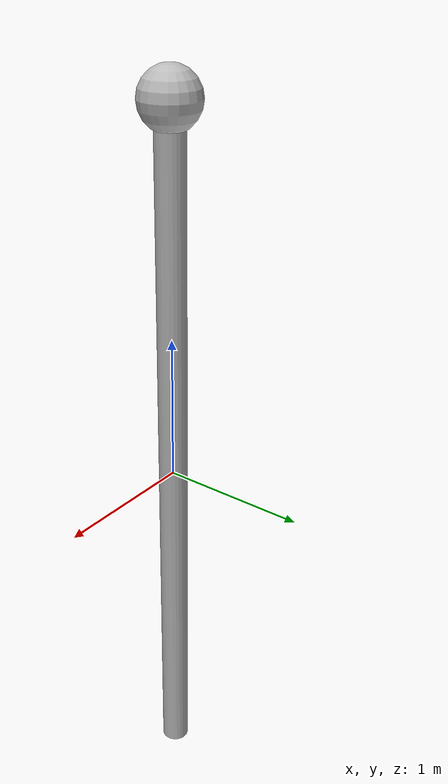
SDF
<?xml version="1.6" ?>
<sdf version="1.6">
<model name="beacon">
    <static>true</static>
  <pose>0 0 0 0 0 0</pose>
  <link name="link">
    <!-- Palo de la baliza: un cilindro -->
    <collision name="collision">
      <geometry>
        <cylinder>
          <radius>0.1</radius>
          <length>5.0</length>
        </cylinder>
      </geometry>
    </collision>
    <visual name="visual">
      <geometry>
        <cylinder>
          <radius>0.1</radius>
          <length>5.0</length>
        </cylinder>
      </geometry>
    </visual>

    <!-- Esfera encima del palo -->
    <collision name="collision_sphere">
      <pose>0 0 2.5 0 0 0</pose>
      <geometry>
        <sphere>
          <radius>0.2</radius>
        </sphere>
      </geometry>
    </collision>
    <visual name="visual_sphere">
      <pose>0 0 2.5 0 0 0</pose>
      <geometry>
        <sphere>
          <radius>0.2</radius>
        </sphere>
      </geometry>
    </visual>
  </link>
</model>
</sdf>
